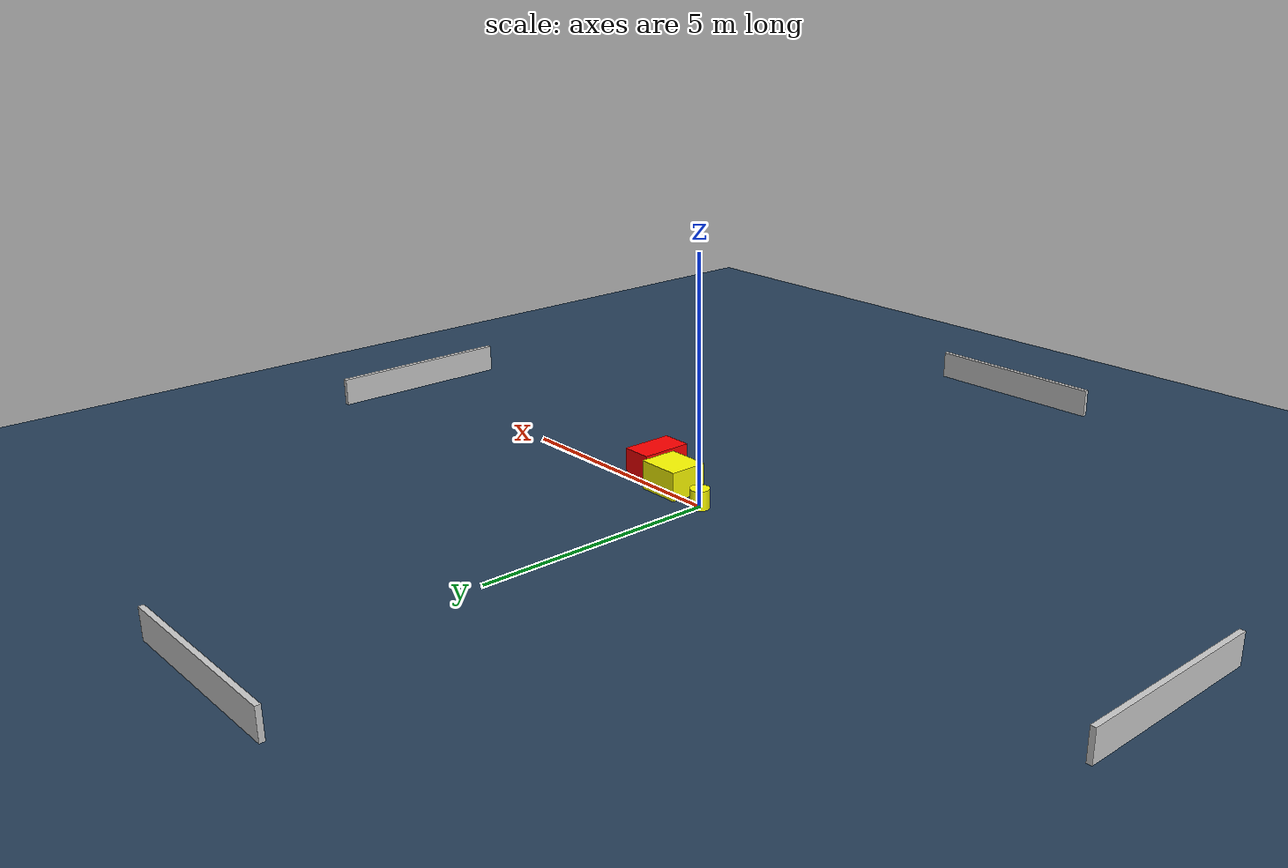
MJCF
<?xml version="1.0" ?>
<mujoco model="generated_environment">
  <option timestep="0.01" integrator="RK4" cone="elliptic"/>
  <default>
    <geom density="1"/>
  </default>
  <asset>
    <texture builtin="gradient" height="3072" name="skybox" rgb1="0.3 0.5 0.7" rgb2="0 0 0" type="skybox" width="512"/>
    <texture builtin="checker" height="300" name="groundplane" rgb1="0.2 0.3 0.4" rgb2="0.1 0.2 0.3" type="2d" width="300"/>
    <material name="groundplane" reflectance="0.2" texrepeat="5 5" texture="groundplane"/>
  </asset>
  <worldbody>
    <light dir="0 0 -1" directional="true" pos="0 0 1.5"/>
    <geom condim="3" friction="0.5 0.005 0.001" material="groundplane" name="floor" pos="0 0 0" size="0 0 0.05" type="plane"/>
    <body name="walls">
      <geom name="wall_1" condim="4" pos="-10.0 0.0 0.3" rgba="0.800000011920929 0.800000011920929 0.800000011920929 1.0" size="0.05 2.0 0.3" type="box"/>
      <geom name="wall_2" condim="4" pos="10.0 0.0 0.3" rgba="0.800000011920929 0.800000011920929 0.800000011920929 1.0" size="0.05 2.0 0.3" type="box"/>
      <geom name="wall_3" condim="4" pos="0.0 -10.0 0.3" rgba="0.800000011920929 0.800000011920929 0.800000011920929 1.0" size="2.0 0.05 0.3" type="box"/>
      <geom name="wall_4" condim="4" pos="0.0 10.0 0.3" rgba="0.800000011920929 0.800000011920929 0.800000011920929 1.0" size="2.0 0.05 0.3" type="box"/>
    </body>
    <body name="robot">
      <joint name="joint_x" type="slide" pos="0 0 0" axis="1 0 0"/>
      <joint name="joint_y" type="slide" pos="0 0 0" axis="0 1 0"/>
      <geom name="robot" type="cylinder" pos="0.0 0.0 0.2" size="0.2 0.2 0.0" mass="5.0" friction="1.0 0.005 0.0001" condim="4" rgba="1.0 1.0 0.0 1.0"/>
    </body>
    <body name="obstacle_1_movable">
      <geom name="obstacle_1_movable" condim="4" pos="0.9965781475681835 -0.2010837880214314 0.3" euler="0 0 359.5741369267409" friction="0.0 0.005 0.001" rgba="1.0 1.0 0.0 1.0" size="0.4584396507013517 0.39886103529978933 0.3" type="box" mass="0.1"/>
      <joint type="free"/>
    </body>
    <body name="obstacle_2_static">
      <geom name="obstacle_2_static" condim="4" pos="1.8879721264151696 -0.5401037304406562 0.3" euler="0 0 359.4845692909399" friction="0.0 0.005 0.001" rgba="1.0 0.0 0.0 1.0" size="0.319864264833707 0.5406050837511422 0.3" type="box"/>
    </body>
  </worldbody>
  <actuator>
    <motor name="actuator_x" joint="joint_x" gear="1" ctrlrange="-1 1"/>
    <motor name="actuator_y" joint="joint_y" gear="1" ctrlrange="-1 1"/>
  </actuator>
</mujoco>
